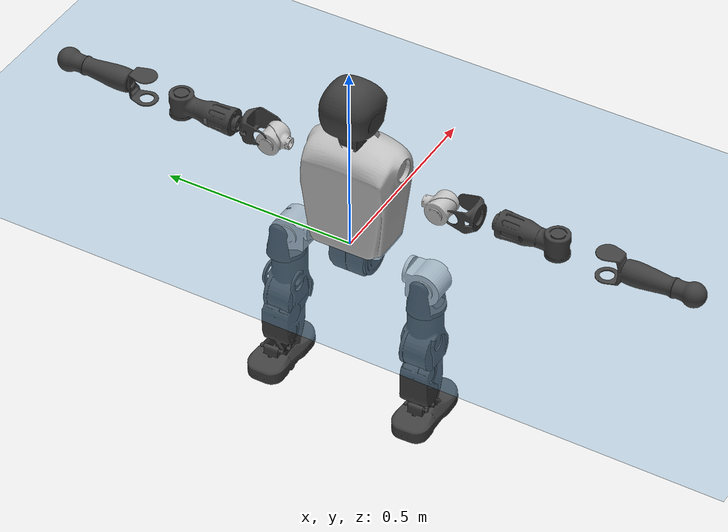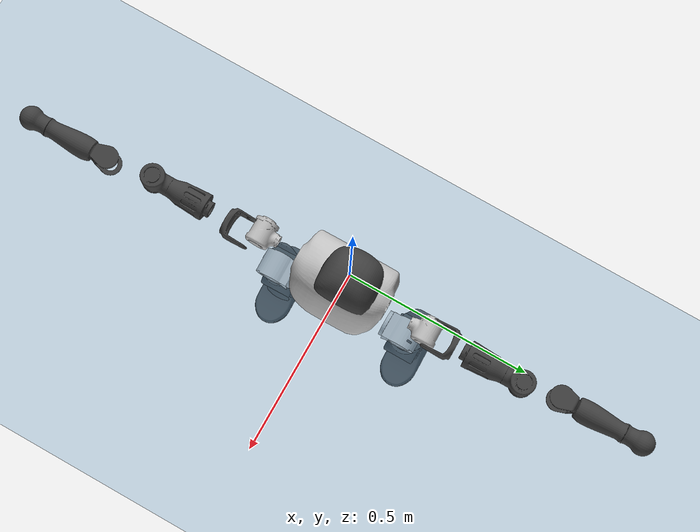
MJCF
<mujoco model="T1">
  <compiler angle="radian" assetdir="assets" balanceinertia="true" inertiafromgeom="false"/>

  <option timestep="0.005" density="1.2" viscosity="2e-05"/>

  <size nkey="1"/>

  <visual>
    <quality shadowsize="8192"/>
    <map shadowclip="0.5"/>
  </visual>

  <default>
    <default class="/">
      <joint armature="0.01" damping="0.01" frictionloss="0.1"/>
      <geom contype="0" conaffinity="0" group="1" solref="-1000 -80"/>
      <site size="0.01 0.005 0.005" group="5"/>
      <general forcelimited="true" biastype="affine" gainprm="25" biasprm="0 -25 -0.6"/>
      <default class="t1">
        <geom rgba="0.25 0.25 0.25 1"/>
        <default class="visual">
          <geom type="mesh" group="2"/>
        </default>
        <default class="collision">
          <geom group="3"/>
        </default>
        <default class="foot">
          <geom size="0.1115 0.05 0.015" type="box" condim="6" group="4" priority="1" solimp="0.015 1 0.015"/>
        </default>
        <default class="reward_collision_sphere">
          <geom group="5" rgba="1 0 0 1"/>
        </default>
      </default>
    </default>
  </default>

  <asset>
    <texture type="skybox" colorspace="auto" name="//unnamed_texture_0" builtin="gradient" rgb1="0.95 0.95 0.95" rgb2="0.95 0.95 0.95" width="100" height="600"/>
    <texture type="2d" colorspace="auto" name="texplane" builtin="checker" rgb1="0.345 0.575 0.748" rgb2="0.345 0.575 0.748" markrgb="1 1 1" width="512" height="512"/>
    <material name="MatPlane" class="/" texture="texplane" texuniform="true" texrepeat="2 2" specular="0.9"/>
    <mesh name="Trunk" class="/" file="Trunk.stl"/>
    <mesh name="H1" class="/" file="H1.stl"/>
    <mesh name="H2" class="/" file="H2.stl"/>
    <mesh name="AL1" class="/" file="AL1.stl"/>
    <mesh name="AL2" class="/" file="AL2.stl"/>
    <mesh name="AL3" class="/" file="AL3.stl"/>
    <mesh name="left_hand_link" class="/" file="left_hand_link.stl"/>
    <mesh name="AR1" class="/" file="AR1.stl"/>
    <mesh name="AR2" class="/" file="AR2.stl"/>
    <mesh name="AR3" class="/" file="AR3.stl"/>
    <mesh name="right_hand_link" class="/" file="right_hand_link.stl"/>
    <mesh name="Waist" class="/" file="Waist.stl"/>
    <mesh name="Hip_Pitch_Left" class="/" file="Hip_Pitch_Left.stl"/>
    <mesh name="Hip_Roll_Left" class="/" file="Hip_Roll_Left.stl"/>
    <mesh name="Hip_Yaw_Left" class="/" file="Hip_Yaw_Left.stl"/>
    <mesh name="Shank_Left" class="/" file="Shank_Left.stl"/>
    <mesh name="Ankle_Cross_Left" class="/" file="Ankle_Cross_Left.stl"/>
    <mesh name="left_foot_link" class="/" file="left_foot_link.stl"/>
    <mesh name="Hip_Pitch_Right" class="/" file="Hip_Pitch_Right.stl"/>
    <mesh name="Hip_Roll_Right" class="/" file="Hip_Roll_Right.stl"/>
    <mesh name="Hip_Yaw_Right" class="/" file="Hip_Yaw_Right.stl"/>
    <mesh name="Shank_Right" class="/" file="Shank_Right.stl"/>
    <mesh name="Ankle_Cross_Right" class="/" file="Ankle_Cross_Right.stl"/>
    <mesh name="right_foot_link" class="/" file="right_foot_link.stl"/>
  </asset>

  <worldbody>
    <geom name="floor" class="/" size="100 100 0.125" type="plane" group="0" material="MatPlane"/>
    <light name="toplight_shadow" class="/" pos="0 0 5" dir="0.0990148 0.0990148 -0.990148" type="directional" ambient="0.04 0.04 0.04" diffuse="0.55 0.55 0.55" specular="0.12 0.12 0.12"/>
    <light name="toplight_fill" class="/" pos="0 0 5" dir="0.0990148 0.0990148 -0.990148" type="directional" castshadow="false" ambient="0.04 0.04 0.04" diffuse="0.3 0.3 0.3" specular="0.08 0.08 0.08"/>
    <body name="trunk" childclass="t1" pos="-0.000340658 0.00891105 0.0084284" quat="0.999999 0.000216663 0.00103534 0.000930825">
      <inertial pos="0.0297428 -0.0181239 0.0629502" quat="0.998501 -0.0256173 0.0466126 0.01292" mass="16.1889" diaginertia="0.0266172 1.41224 0.0162655"/>
      <joint name="//unnamed_joint_0" type="free" armature="0" damping="0" frictionloss="0"/>
      <geom name="//unnamed_geom_1" class="visual" rgba="0.76 0.76 0.76 1" mesh="Trunk"/>
      <geom name="//unnamed_geom_2" class="collision" size="0.0813184 0.108425 0.162637" pos="0.0457893 0 0.0899924" type="box"/>
      <geom name="//unnamed_geom_3" class="reward_collision_sphere" size="0.124688" pos="0.0457893 0 0.0749937"/>
      <geom name="//unnamed_geom_4" class="reward_collision_sphere" size="0.0162637" pos="0.0457893 0.14787 0"/>
      <geom name="//unnamed_geom_5" class="reward_collision_sphere" size="0.0162637" pos="0.0457893 -0.14787 0"/>
      <geom name="//unnamed_geom_6" class="reward_collision_sphere" size="0.0162637" pos="0.0457893 0.186142 0.134989"/>
      <geom name="//unnamed_geom_7" class="reward_collision_sphere" size="0.0162637" pos="0.0457893 -0.186142 0.134989"/>
      <site name="imu" pos="0.0570538 0.0515653 -0.0368246" size="0.0108425"/>
      <camera name="track" pos="0 -3.47929 0" quat="0.707107 0.707107 0 0" mode="trackcom"/>
      <camera name="ego_camera" pos="0.093105 0 0.314974" quat="-0.5 -0.5 0.5 0.5"/>
      <body name="H1" pos="0.0561567 0.015086 0.166439" quat="1 5.78001e-05 6.66072e-05 5.02398e-05">
        <inertial pos="-0.00196769 -0.0206518 0.0492124" quat="0.772507 -0.0226174 0.0769831 0.629916" mass="0.693819" diaginertia="6.47629e-05 0.00439557 3.3676e-05"/>
        <joint name="AAHead_yaw" pos="0 0 0" axis="-0.0449757 0.0124027 0.998911" stiffness="0.0260289" range="-1.55999 1.89439" armature="0.0120844" damping="0" frictionloss="0.209622"/>
        <geom name="//unnamed_geom_8" class="visual" mesh="H1"/>
        <body name="H2" pos="-0.00729415 0.00865046 0.0611533" quat="0.999998 0.00163415 0.000532236 0.000370683">
          <inertial pos="0.0139177 0.0185861 0.0826829" quat="0.990377 0.118078 0.00736085 -0.071812" mass="0.761807" diaginertia="0.000526526 0.0291448 0.000325116"/>
          <joint name="Head_pitch" pos="0 0 0" axis="-0.0277776 -0.999399 0.0207194" range="-1.15019 0.371288" armature="0.0114681" damping="0.00555272" frictionloss="0.175665"/>
          <geom name="//unnamed_geom_9" class="visual" mesh="H2"/>
          <geom name="//unnamed_geom_10" class="collision" size="0.0867396" pos="0.00763155 0 0.0824931"/>
          <geom name="//unnamed_geom_11" class="reward_collision_sphere" size="0.0975821" pos="0.0152631 0 0.0749937"/>
        </body>
      </body>
      <body name="AL1" pos="0.0567629 0.183874 0.175182" quat="0.999966 0.00423298 0.00302779 0.00632385">
        <inertial pos="-0.00244788 0.0883002 0.00934807" quat="0.460534 0.554574 -0.519537 0.458735" mass="0.690307" diaginertia="0.000309386 0.0160766 6.46455e-05"/>
        <joint name="Left_Shoulder_Pitch" pos="0 0 0" axis="-0.0115767 0.99983 0.0143506" range="-3.43906 0.919974" armature="0.0117973" damping="0.0415277" frictionloss="0.110779"/>
        <geom name="//unnamed_geom_12" class="visual" rgba="0.76 0.76 0.76 1" mesh="AL1"/>
        <body name="AL2" pos="0.00251552 0.0670142 0.0127651" quat="0.999979 -0.00151161 -0.00543755 -0.00312789">
          <inertial pos="-0.0134292 0.0481332 -0.0112426" quat="0.540789 0.545399 -0.443397 0.462045" mass="0.169137" diaginertia="9.49884e-05 0.00525762 3.17004e-05"/>
          <joint name="Left_Shoulder_Roll" pos="0 0 0" axis="-0.999952 -0.00562365 -0.00805994" stiffness="0.00266023" range="-1.58004 1.74146" armature="0.00780115" damping="0.0130424" frictionloss="0.144121"/>
          <geom name="//unnamed_geom_13" class="visual" mesh="AL2"/>
          <body name="AL3" pos="-0.00237244 0.0868085 -0.0107293" quat="1 5.80194e-05 -0.000162374 0.000112655">
            <inertial pos="0.01695 0.144719 0.0116418" quat="0.709291 0.702153 -0.0613832 0.0109506" mass="0.879981" diaginertia="0.0029774 0.153404 0.000108578"/>
            <joint name="Left_Elbow_Pitch" pos="0 0 0" axis="-0.0453435 -0.998666 -0.0247215" range="-2.39149 1.93708" armature="0.0131941" damping="0" frictionloss="0.12319"/>
            <geom name="//unnamed_geom_14" class="visual" mesh="AL3"/>
            <geom name="//unnamed_geom_15" class="collision" size="0.0325274 0.0813184" pos="0 0.0869822 0" quat="0.707105 0.707108 0 0" type="cylinder"/>
            <geom name="//unnamed_geom_16" class="reward_collision_sphere" size="0.0390328"/>
            <body name="left_hand_link" pos="-0.0100416 0.239354 0.0174468" quat="0.999996 0.00243368 4.83117e-05 0.00156847">
              <inertial pos="-0.0044986 0.19561 -0.00362647" quat="0.68214 0.731056 -0.0134796 0.00778606" mass="0.387456" diaginertia="0.00250388 0.13475 5.4506e-05"/>
              <joint name="Left_Elbow_Yaw" pos="0 0 0" axis="0.0426295 0.00739677 0.999064" range="-2.11027 0.0833636" armature="0.0107194" damping="0.101375" frictionloss="0.0313054"/>
              <geom name="//unnamed_geom_17" class="visual" mesh="left_hand_link"/>
              <geom name="//unnamed_geom_18" class="collision" size="0.0325274 0.0948715" pos="0 0.226154 0" quat="0.707105 0.707108 0 0" type="cylinder"/>
              <geom name="//unnamed_geom_19" class="reward_collision_sphere" size="0.0542123"/>
              <geom name="//unnamed_geom_20" class="reward_collision_sphere" size="0.0379486" pos="0 0.191361 0"/>
              <geom name="//unnamed_geom_21" class="reward_collision_sphere" size="0.0379486" pos="0 0.374023 0"/>
            </body>
          </body>
        </body>
      </body>
      <body name="AR1" pos="0.0420156 -0.183595 0.167063" quat="0.999981 0.00147975 0.000500428 -0.00589403">
        <inertial pos="0.0113246 -0.0786187 0.0167893" quat="0.550717 0.461616 -0.45334 0.527356" mass="0.483602" diaginertia="0.000313526 0.0158439 5.1383e-05"/>
        <joint name="Right_Shoulder_Pitch" pos="0 0 0" axis="0.0506246 -0.998617 0.0142178" range="-1.1859 3.35494" armature="0.00730297" damping="0.0864359" frictionloss="0.202151"/>
        <geom name="//unnamed_geom_22" class="visual" rgba="0.76 0.76 0.76 1" mesh="AR1"/>
        <body name="AR2" pos="0.0167421 -0.0809313 -0.00532032" quat="1 9.30529e-05 -3.41707e-05 -9.83263e-05">
          <inertial pos="0.0144385 -0.0478562 -0.00573963" quat="0.449936 0.47136 -0.538622 0.534101" mass="0.171807" diaginertia="7.90445e-05 0.00457424 3.16397e-05"/>
          <joint name="Right_Shoulder_Roll" pos="0 0 0" axis="-0.998056 -0.0502335 0.0368945" stiffness="0.010161" range="-1.68489 1.62529" armature="0.0107246" damping="0.101439" frictionloss="0.0683066"/>
          <geom name="//unnamed_geom_23" class="visual" mesh="AR2"/>
          <body name="AR3" pos="-0.00133476 -0.111898 0.00924115" quat="0.999982 -0.00288228 -0.00173177 0.00493249">
            <inertial pos="-0.00792016 -0.143606 0.00711107" quat="0.670339 0.741254 0.00162411 -0.0344238" mass="1.10319" diaginertia="0.00285175 0.212874 0.000139425"/>
            <joint name="Right_Elbow_Pitch" pos="0 0 0" axis="0.040224 0.99905 0.0167961" range="-2.16366 2.10472" armature="0.0111294" damping="0.0047655" frictionloss="0.0740931"/>
            <geom name="//unnamed_geom_24" class="visual" mesh="AR3"/>
            <geom name="//unnamed_geom_25" class="collision" size="0.0325274 0.0813184" pos="0 -0.0869822 0" quat="0.707105 0.707108 0 0" type="cylinder"/>
            <geom name="//unnamed_geom_26" class="reward_collision_sphere" size="0.0390328"/>
            <body name="right_hand_link" pos="0.0138304 -0.267752 -0.017809" quat="0.99998 -0.00363392 -0.00308637 0.0040412">
              <inertial pos="-0.00204143 -0.203556 -0.00859404" quat="0.718522 0.694935 -0.0280467 0.00238828" mass="0.393215" diaginertia="0.00166626 0.101959 4.94562e-05"/>
              <joint name="Right_Elbow_Yaw" pos="0 0 0" axis="0.00345881 -0.00170603 0.999993" range="-0.249312 2.48393" armature="0.0129011" damping="0.0220252" frictionloss="0.0169802"/>
              <geom name="//unnamed_geom_27" class="visual" mesh="right_hand_link"/>
              <geom name="//unnamed_geom_28" class="collision" size="0.0325274 0.0948715" pos="0 -0.226154 0" quat="0.707105 0.707108 0 0" type="cylinder"/>
              <geom name="//unnamed_geom_29" class="reward_collision_sphere" size="0.0542123"/>
              <geom name="//unnamed_geom_30" class="reward_collision_sphere" size="0.0379486" pos="0 -0.191361 0"/>
              <geom name="//unnamed_geom_31" class="reward_collision_sphere" size="0.0379486" pos="0 -0.374023 0"/>
            </body>
          </body>
        </body>
      </body>
      <body name="Waist" pos="0.0613755 0.00492209 -0.0702836" quat="0.999991 0.000133405 0.00432849 0.000194168">
        <inertial pos="0.0206935 -0.00674103 -0.000233902" quat="0.980432 -0.00838426 -0.195781 0.0187889" mass="4.40875" diaginertia="0.00194742 0.100945 0.00114687"/>
        <joint name="Waist" pos="0 0 0" axis="-0.0130705 -0.0399079 0.999118" stiffness="0.0114522" range="-1.34473 1.53315" armature="0.00442313" damping="0" frictionloss="0.105047"/>
        <geom name="//unnamed_geom_32" class="visual" mesh="Waist"/>
        <body name="Hip_Pitch_Left" pos="-0.00558833 0.173355 0.0149702" quat="0.999995 1.00825e-05 0.000965558 -0.00290046">
          <inertial pos="-2.81743e-05 -0.0270365 -0.0265337" quat="0.967336 0.246791 0.0404672 -0.0414502" mass="0.999356" diaginertia="0.000449383 0.019053 0.000283645"/>
          <joint name="Left_Hip_Pitch" pos="0 0 0" axis="0.00117042 0.999996 0.00260192" range="-1.78746 1.23772" armature="0.000959449" damping="0" frictionloss="0.0609242"/>
          <geom name="//unnamed_geom_33" class="visual" rgba="0.76 0.76 0.76 1" mesh="Hip_Pitch_Left"/>
          <body name="Hip_Roll_Left" pos="-0.0165009 0.0103371 -0.00417335" quat="0.999999 0.000772891 -0.00118092 0.00024402">
            <inertial pos="0.0115667 0.000718104 -0.0505609" quat="0.671161 0.0225084 0.0611771 0.73844" mass="0.531166" diaginertia="0.000475175 0.0185959 0.00010691"/>
            <joint name="Left_Hip_Roll" pos="0 0 0" axis="-0.997146 -0.059473 0.0464958" range="-1.58134 0.0649731" armature="0.00165167" damping="0.0433615" frictionloss="0.170112"/>
            <geom name="//unnamed_geom_34" class="visual" mesh="Hip_Roll_Left"/>
            <geom name="//unnamed_geom_35" class="reward_collision_sphere" size="0.0596335"/>
            <body name="Hip_Yaw_Left" pos="0.0126528 -0.000558787 -0.0713766" quat="0.999996 0.000778336 -0.0025598 0.00105329">
              <inertial pos="0.00973052 -0.00794996 -0.060451" quat="0.712157 -0.0258489 -0.0201502 0.701255" mass="3.13001" diaginertia="0.00724979 0.504558 0.00066829"/>
              <joint name="Left_Hip_Yaw" pos="0 0 0" axis="-0.0303808 7.73376e-05 -0.999538" range="-0.775491 0.686482" armature="0.00939229" damping="0.053615" frictionloss="0.117141"/>
              <geom name="//unnamed_geom_36" class="visual" mesh="Hip_Yaw_Left"/>
              <geom name="//unnamed_geom_37" class="collision" size="0.0542123 0.0867396" type="cylinder"/>
              <body name="Shank_Left" pos="-0.0284851 -0.000211058 -0.0815885" quat="0.999998 -0.0014371 -0.000512753 0.0015268">
                <inertial pos="0.00224027 -0.0147574 -0.109134" quat="0.997573 0.00176985 -0.0237151 0.0654478" mass="2.82411" diaginertia="0.00918806 0.608806 0.000416969"/>
                <joint name="Left_Knee_Pitch" pos="0 0 0" axis="-0.0154235 0.999769 0.0149929" range="-0.210284 2.54075" armature="0.011437" damping="0.000577582" frictionloss="0.145865"/>
                <geom name="//unnamed_geom_38" class="visual" mesh="Shank_Left"/>
                <geom name="//unnamed_geom_39" class="collision" size="0.0542123 0.0813184" pos="0 0 -0.0899924" type="cylinder"/>
                <geom name="//unnamed_geom_40" class="reward_collision_sphere" size="0.0704759"/>
                <body name="Ankle_Cross_Left" pos="-0.00522569 0.000383151 -0.223156" quat="0.999997 -2.16648e-05 0.00234882 0.000703625">
                  <inertial pos="0.00707367 -0.0135634 -0.0171602" quat="0.406219 0.601479 0.549711 0.413554" mass="0.0811343" diaginertia="6.46722e-06 0.0005004 2.84213e-06"/>
                  <joint name="Left_Ankle_Pitch" pos="0 0 0" axis="-0.0113688 0.999935 -0.00102508" range="-1.20289 0.223383" armature="0.0161709" damping="0.0370271" frictionloss="0.0649339"/>
                  <geom name="//unnamed_geom_41" class="visual" mesh="Ankle_Cross_Left"/>
                  <body name="left_foot_link" pos="0.00649211 0.0128995 -0.0157384" quat="0.999987 0.000661767 -0.00360613 0.00360244">
                    <inertial pos="0.0136945 0.00103353 0.00792158" quat="0.0159962 0.638872 -0.0283621 0.768624" mass="0.989708" diaginertia="0.00100067 0.0388308 0.000476038"/>
                    <joint name="Left_Ankle_Roll" pos="0 0 0" axis="-0.999742 -0.0113127 -0.0196765" range="-0.431496 0.42917" armature="0.0107447" damping="0.0411791" frictionloss="0.108183"/>
                    <geom name="//unnamed_geom_42" class="visual" mesh="left_foot_link"/>
                    <geom name="left_foot" class="foot" size="0.0713158 0.0205556 0.0153269" pos="0.00763155 0 -0.0112491"/>
                    <geom name="//unnamed_geom_44" class="reward_collision_sphere" size="0.0563808" pos="0.00763155 0 -0.0112491"/>
                    <geom name="//unnamed_geom_45" class="reward_collision_sphere" size="0.0325274" pos="0.0724998 -0.0400118 -0.0112491"/>
                    <geom name="//unnamed_geom_46" class="reward_collision_sphere" size="0.0325274" pos="-0.0534209 -0.0400118 -0.0112491"/>
                    <site name="left_foot" class="foot" pos="0.00763155 0 -0.0112491" size="0.0108425"/>
                  </body>
                </body>
              </body>
            </body>
          </body>
        </body>
        <body name="Hip_Pitch_Right" pos="0.00239004 -0.192438 -0.00742139" quat="0.999967 0.000337044 0.00188119 0.00789826">
          <inertial pos="0.0148808 0.0212672 -0.0291062" quat="0.977144 -0.209487 0.0214249 0.0290954" mass="1.07765" diaginertia="0.000389494 0.021365 0.000305883"/>
          <joint name="Right_Hip_Pitch" pos="0 0 0" axis="-0.017226 -0.999574 0.0235687" range="-1.5591 2.1572" armature="0.0177956" damping="0.00514281" frictionloss="0.101369"/>
          <geom name="//unnamed_geom_47" class="visual" rgba="0.76 0.76 0.76 1" mesh="Hip_Pitch_Right"/>
          <body name="Hip_Roll_Right" pos="-0.0169768 -0.00255793 -0.00234625" quat="0.999986 -0.00510738 -0.00123842 0.000956839">
            <inertial pos="0.000631726 -0.00873428 -0.0525361" quat="0.715981 0.0788786 -0.0180247 0.693415" mass="0.517009" diaginertia="0.000451951 0.0185336 0.00011771"/>
            <joint name="Right_Hip_Roll" pos="0 0 0" axis="-0.99995 0.00110735 0.00991603" range="-0.568237 1.7054" armature="0.0105898" damping="0.00356986" frictionloss="0.0490676"/>
            <geom name="//unnamed_geom_48" class="visual" mesh="Hip_Roll_Right"/>
            <geom name="//unnamed_geom_49" class="reward_collision_sphere" size="0.0596335"/>
            <body name="Hip_Yaw_Right" pos="0.00940198 0.0070618 -0.0648296" quat="0.999996 -0.000649115 -0.0019259 -0.00196888">
              <inertial pos="-0.00715368 0.0108889 -0.0501238" quat="0.7048 -0.0264363 0.00575935 0.70889" mass="2.29747" diaginertia="0.00576613 0.312191 0.00063859"/>
              <joint name="Right_Hip_Yaw" pos="0 0 0" axis="0.09335 0.0120125 -0.995561" stiffness="0.0225978" range="-1.12279 0.850507" armature="0.00243075" damping="0.0885278" frictionloss="0.109245"/>
              <geom name="//unnamed_geom_50" class="visual" mesh="Hip_Yaw_Right"/>
              <geom name="//unnamed_geom_51" class="collision" size="0.0542123 0.0867396" type="cylinder"/>
              <body name="Shank_Right" pos="-0.00894797 0.00346284 -0.115025" quat="0.999983 -6.77825e-05 0.00338171 0.00475889">
                <inertial pos="-0.0049736 -0.00162246 -0.0777842" quat="0.999666 -0.0107296 -0.00321262 -0.0233108" mass="1.73678" diaginertia="0.0076831 0.490235 0.000374797"/>
                <joint name="Right_Knee_Pitch" pos="0 0 0" axis="0.0515695 -0.997372 -0.0508831" range="-2.67008 -0.184819" armature="0.000981021" damping="0" frictionloss="0.11152"/>
                <geom name="//unnamed_geom_52" class="visual" mesh="Shank_Right"/>
                <geom name="//unnamed_geom_53" class="collision" size="0.0542123 0.0813184" pos="0 0 -0.0899924" type="cylinder"/>
                <geom name="//unnamed_geom_54" class="reward_collision_sphere" size="0.0704759"/>
                <body name="Ankle_Cross_Right" pos="0.0117625 -0.00793404 -0.214504" quat="0.999999 -0.00123598 -0.000359843 0.000836917">
                  <inertial pos="-0.00059266 0.0122735 -0.00709598" quat="0.409194 0.567188 0.571026 0.429868" mass="0.0715019" diaginertia="6.95843e-06 0.000377036 2.04162e-06"/>
                  <joint name="Right_Ankle_Pitch" pos="0 0 0" axis="0.0512375 -0.99858 0.0145613" stiffness="0.074407" range="-0.0437829 1.18088" armature="0.0105761" damping="0" frictionloss="0.144987"/>
                  <geom name="//unnamed_geom_55" class="visual" mesh="Ankle_Cross_Right"/>
                  <body name="right_foot_link" pos="-0.0162739 -0.00123793 -0.000161867" quat="0.999999 -0.000228353 4.69275e-06 -0.000981955">
                    <inertial pos="0.0176358 0.00724713 -0.0076799" quat="0.00622617 0.620435 -0.0042428 0.784221" mass="0.827223" diaginertia="0.000681991 0.0428119 0.000471776"/>
                    <joint name="Right_Ankle_Roll" pos="0 0 0" axis="-0.998015 -0.00773388 0.0625015" stiffness="0.0234117" range="-0.0978927 0.424131" armature="0.00862514" damping="0.0843385" frictionloss="0.078491"/>
                    <geom name="//unnamed_geom_56" class="visual" mesh="right_foot_link"/>
                    <geom name="right_foot" class="foot" size="0.105435 0.0710457 0.0214924" pos="0.00763155 0 -0.0112491"/>
                    <geom name="//unnamed_geom_58" class="reward_collision_sphere" size="0.0433698"/>
                    <geom name="//unnamed_geom_59" class="reward_collision_sphere" size="0.0325274" pos="0.00763155 0 -0.0112491"/>
                    <geom name="//unnamed_geom_60" class="reward_collision_sphere" size="0.0325274" pos="0.0724998 0.0400118 -0.0112491"/>
                    <geom name="//unnamed_geom_61" class="reward_collision_sphere" size="0.0325274" pos="-0.0534209 0.0400118 -0.0112491"/>
                    <site name="right_foot" class="foot" pos="0.00763155 0 -0.0112491" size="0.0108425"/>
                  </body>
                </body>
              </body>
            </body>
          </body>
        </body>
      </body>
    </body>
  </worldbody>

  <contact>
    <pair class="/" geom1="floor" geom2="left_foot" name="//unnamed_contact_0"/>
    <pair class="/" geom1="floor" geom2="right_foot" name="//unnamed_contact_1"/>
  </contact>

  <actuator>
    <general name="AAHead_yaw" class="/" joint="AAHead_yaw" forcerange="-5.42467 5.42467" gainprm="36.3393" biasprm="0 -36.3393 -0.72296"/>
    <general name="Head_pitch" class="/" joint="Head_pitch" forcerange="-7.52291 7.52291" gainprm="36.3393" biasprm="0 -36.3393 -0.72296"/>
    <general name="Left_Shoulder_Pitch" class="/" joint="Left_Shoulder_Pitch" forcerange="-27.9233 27.9233" gainprm="36.3393" biasprm="0 -36.3393 -0.72296"/>
    <general name="Left_Shoulder_Roll" class="/" joint="Left_Shoulder_Roll" forcerange="-25.4084 25.4084" gainprm="36.3393" biasprm="0 -36.3393 -0.72296"/>
    <general name="Left_Elbow_Pitch" class="/" joint="Left_Elbow_Pitch" forcerange="-19.1606 19.1606" gainprm="36.3393" biasprm="0 -36.3393 -0.72296"/>
    <general name="Left_Elbow_Yaw" class="/" joint="Left_Elbow_Yaw" forcerange="-25.6283 25.6283" gainprm="36.3393" biasprm="0 -36.3393 -0.72296"/>
    <general name="Right_Shoulder_Pitch" class="/" joint="Right_Shoulder_Pitch" forcerange="-13.5761 13.5761" gainprm="36.3393" biasprm="0 -36.3393 -0.72296"/>
    <general name="Right_Shoulder_Roll" class="/" joint="Right_Shoulder_Roll" forcerange="-27.659 27.659" gainprm="36.3393" biasprm="0 -36.3393 -0.72296"/>
    <general name="Right_Elbow_Pitch" class="/" joint="Right_Elbow_Pitch" forcerange="-7.34969 7.34969" gainprm="36.3393" biasprm="0 -36.3393 -0.72296"/>
    <general name="Right_Elbow_Yaw" class="/" joint="Right_Elbow_Yaw" forcerange="-13.1373 13.1373" gainprm="36.3393" biasprm="0 -36.3393 -0.72296"/>
    <general name="Waist" class="/" joint="Waist" forcerange="-21.8583 21.8583" gainprm="36.3393" biasprm="0 -36.3393 -0.72296"/>
    <general name="Left_Hip_Pitch" class="/" joint="Left_Hip_Pitch" forcerange="-43.407 43.407" gainprm="36.3393" biasprm="0 -36.3393 -0.72296"/>
    <general name="Left_Hip_Roll" class="/" joint="Left_Hip_Roll" forcerange="-15.5159 15.5159" gainprm="36.3393" biasprm="0 -36.3393 -0.72296"/>
    <general name="Left_Hip_Yaw" class="/" joint="Left_Hip_Yaw" forcerange="-50.4122 50.4122" gainprm="36.3393" biasprm="0 -36.3393 -0.72296"/>
    <general name="Left_Knee_Pitch" class="/" joint="Left_Knee_Pitch" forcerange="-51.5054 51.5054" gainprm="36.3393" biasprm="0 -36.3393 -0.72296"/>
    <general name="Left_Ankle_Pitch" class="/" joint="Left_Ankle_Pitch" forcerange="-23.3324 23.3324" gainprm="36.3393" biasprm="0 -36.3393 -0.72296"/>
    <general name="Left_Ankle_Roll" class="/" joint="Left_Ankle_Roll" forcerange="-6.77429 6.77429" gainprm="36.3393" biasprm="0 -36.3393 -0.72296"/>
    <general name="Right_Hip_Pitch" class="/" joint="Right_Hip_Pitch" forcerange="-50.1563 50.1563" gainprm="36.3393" biasprm="0 -36.3393 -0.72296"/>
    <general name="Right_Hip_Roll" class="/" joint="Right_Hip_Roll" forcerange="-29.6184 29.6184" gainprm="36.3393" biasprm="0 -36.3393 -0.72296"/>
    <general name="Right_Hip_Yaw" class="/" joint="Right_Hip_Yaw" forcerange="-11.5891 11.5891" gainprm="36.3393" biasprm="0 -36.3393 -0.72296"/>
    <general name="Right_Knee_Pitch" class="/" joint="Right_Knee_Pitch" forcerange="-64.216 64.216" gainprm="36.3393" biasprm="0 -36.3393 -0.72296"/>
    <general name="Right_Ankle_Pitch" class="/" joint="Right_Ankle_Pitch" forcerange="-26.8588 26.8588" gainprm="36.3393" biasprm="0 -36.3393 -0.72296"/>
    <general name="Right_Ankle_Roll" class="/" joint="Right_Ankle_Roll" forcerange="-23.4019 23.4019" gainprm="36.3393" biasprm="0 -36.3393 -0.72296"/>
  </actuator>

  <sensor>
    <gyro site="imu" name="imu_angular_velocity"/>
    <velocimeter site="imu" name="imu_linear_velocity"/>
    <framelinvel objtype="site" objname="left_foot" name="left_foot_global_linear_velocity"/>
    <framelinvel objtype="site" objname="right_foot" name="right_foot_global_linear_velocity"/>
  </sensor>

  <keyframe>
    <key name="home" qpos="0 0 0.6385 1 0 0 0 0 0 0 1.4 0 -0.4 0 -1.4 0 0.4 0 -0.4 0 0 0.8 -0.4 0 0.4 0 0 -0.8 0.4 0"/>
  </keyframe>
</mujoco>
